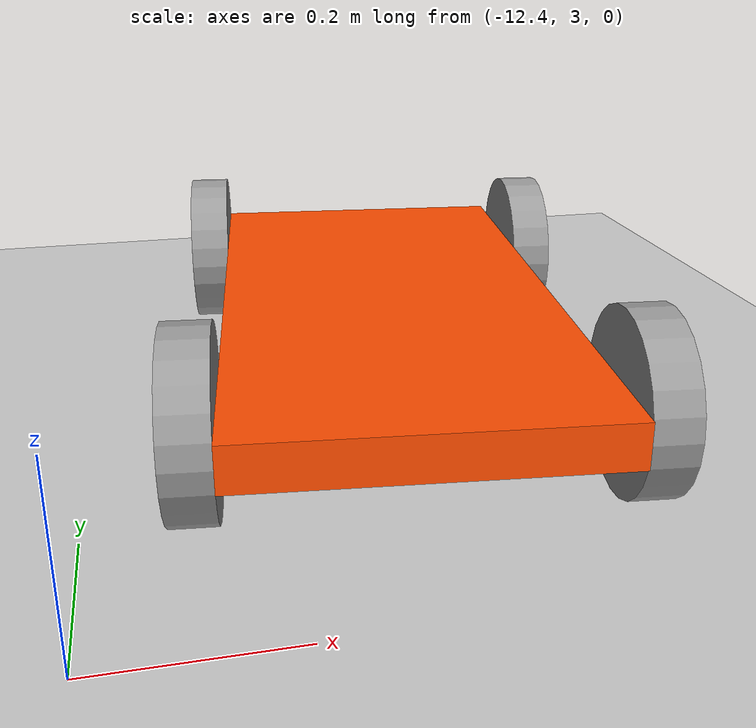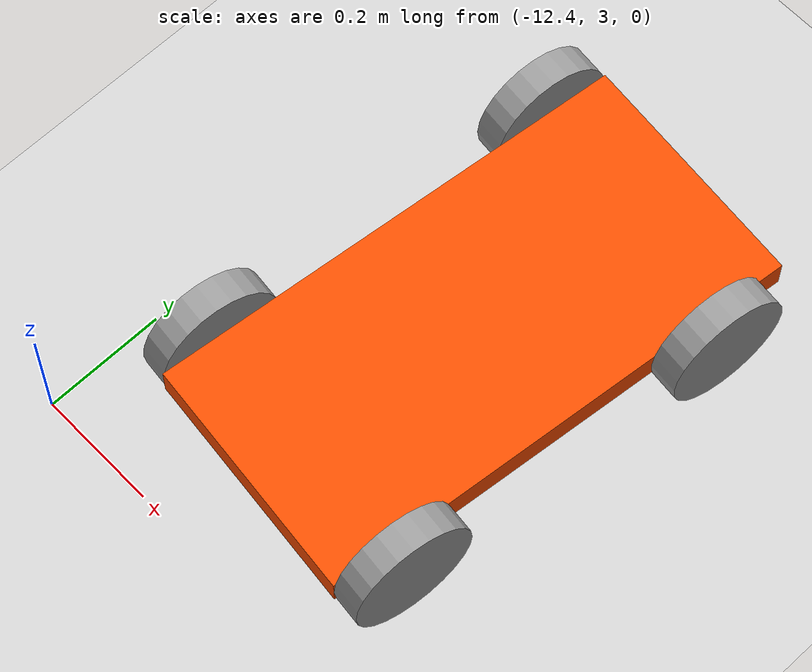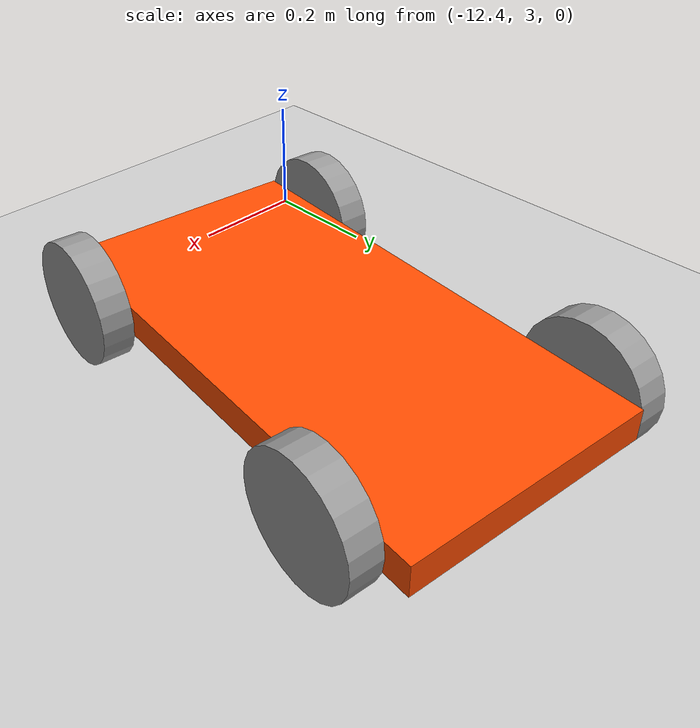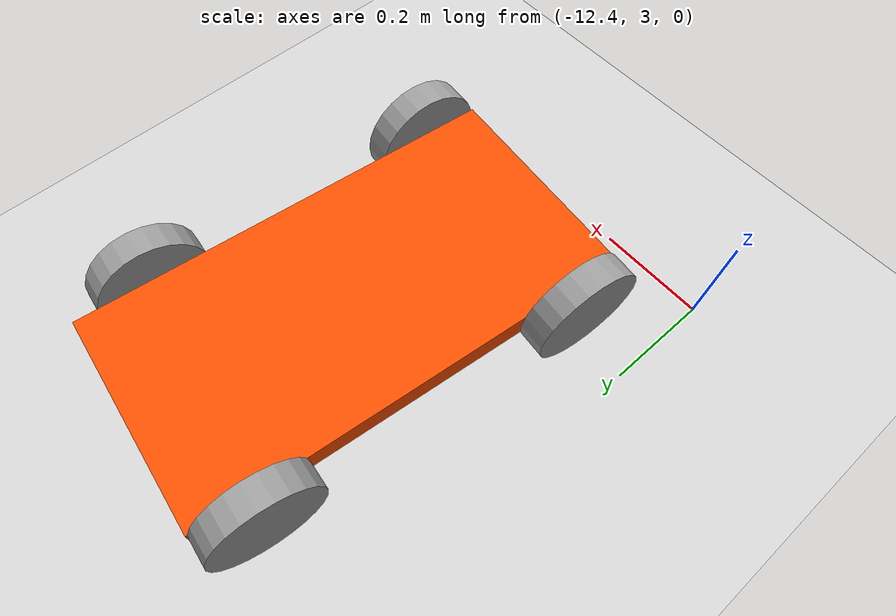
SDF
<sdf version="1.6">
 <world name="default">
  <model name="ground_plane">
   <static>1</static>
   <link name="link">
    <collision name="collision">
     <geometry><plane><normal>0 0 1</normal><size>100 100</size></plane></geometry>
     <surface><friction><ode><mu>100</mu><mu2>50</mu2></ode></friction></surface>
    </collision>
    <visual name="visual">
     <cast_shadows>0</cast_shadows>
     <geometry><plane><normal>0 0 1</normal><size>100 100</size></plane></geometry>
     <material>
      <script><uri>file://media/materials/scripts/gazebo.material</uri><name>Gazebo/Grey</name></script>
     </material>
    </visual>
   </link>
  </model>
  <model name="myRobot_4">
   <link name="link_0">
    <pose>0.008 1e-06 0 0 -0 0</pose>
    <inertial>
     <mass>1</mass>
     <inertia>
      <ixx>0.166667</ixx>
      <ixy>0</ixy>
      <ixz>0</ixz>
      <iyy>0.166667</iyy>
      <iyz>0</iyz>
      <izz>0.166667</izz>
     </inertia>
    </inertial>
    <visual name="visual">
     <geometry><box><size>0.8 0.4 0.05</size></box></geometry>
     <material>
      <lighting>1</lighting>
      <script><uri>file://media/materials/scripts/gazebo.material</uri><name>Gazebo/Grey</name></script>
      <shader type="pixel"><normal_map>__default__</normal_map></shader>
      <ambient>1 0.3 0 1</ambient>
      <diffuse>0.7 0.7 0.7 1</diffuse>
      <specular>0.01 0.01 0.01 1</specular>
      <emissive>0 0 0 1</emissive>
     </material>
    </visual>
    <collision name="collision">
     <geometry><box><size>0.8 0.4 0.05</size></box></geometry>
     <surface>
      <friction>
       <ode><mu>1</mu><mu2>1</mu2><fdir1>0 0 0</fdir1><slip1>0</slip1><slip2>0</slip2></ode>
       <torsional>
        <coefficient>1</coefficient>
        <patch_radius>0</patch_radius>
        <surface_radius>0</surface_radius>
        <use_patch_radius>1</use_patch_radius>
        <ode><slip>0</slip></ode>
       </torsional>
      </friction>
      <bounce><restitution_coefficient>0</restitution_coefficient><threshold>1e+06</threshold></bounce>
      <contact>
       <collide_without_contact>0</collide_without_contact>
       <collide_without_contact_bitmask>1</collide_without_contact_bitmask>
       <collide_bitmask>1</collide_bitmask>
       <ode>
        <soft_cfm>0</soft_cfm>
        <soft_erp>0.2</soft_erp>
        <kp>1e+13</kp>
        <kd>1</kd>
        <max_vel>0.01</max_vel>
        <min_depth>0</min_depth>
       </ode>
       <bullet>
        <split_impulse>1</split_impulse>
        <split_impulse_penetration_threshold>-0.01</split_impulse_penetration_threshold>
        <soft_cfm>0</soft_cfm>
        <soft_erp>0.2</soft_erp>
        <kp>1e+13</kp>
        <kd>1</kd>
       </bullet>
      </contact>
     </surface>
    </collision>
   </link>
   <link name="link_1">
    <pose>0.268 -0.225013 0 1.5707 -0 0</pose>
    <inertial>
     <mass>1</mass>
     <inertia><ixx>0.145833</ixx><ixy>0</ixy><ixz>0</ixz><iyy>0.145833</iyy><iyz>0</iyz><izz>0.125</izz></inertia>
    </inertial>
    <visual name="visual">
     <geometry><cylinder><radius>0.1</radius><length>0.05</length></cylinder></geometry>
     <material>
      <lighting>1</lighting>
      <script><uri>file://media/materials/scripts/gazebo.material</uri><name>Gazebo/Grey</name></script>
      <shader type="pixel"><normal_map>__default__</normal_map></shader>
      <ambient>1 1 1 1</ambient>
      <diffuse>0.7 0.7 0.7 1</diffuse>
      <specular>0.01 0.01 0.01 1</specular>
      <emissive>0 0 0 1</emissive>
     </material>
    </visual>
    <collision name="collision">
     <geometry><cylinder><radius>0.1</radius><length>0.05</length></cylinder></geometry>
     <surface>
      <friction>
       <ode><mu>1</mu><mu2>1</mu2><fdir1>0 0 0</fdir1><slip1>0</slip1><slip2>0</slip2></ode>
       <torsional>
        <coefficient>1</coefficient>
        <patch_radius>0</patch_radius>
        <surface_radius>0</surface_radius>
        <use_patch_radius>1</use_patch_radius>
        <ode><slip>0</slip></ode>
       </torsional>
      </friction>
      <bounce><restitution_coefficient>0</restitution_coefficient><threshold>1e+06</threshold></bounce>
      <contact>
       <collide_without_contact>0</collide_without_contact>
       <collide_without_contact_bitmask>1</collide_without_contact_bitmask>
       <collide_bitmask>1</collide_bitmask>
       <ode>
        <soft_cfm>0</soft_cfm>
        <soft_erp>0.2</soft_erp>
        <kp>1e+13</kp>
        <kd>1</kd>
        <max_vel>0.01</max_vel>
        <min_depth>0</min_depth>
       </ode>
       <bullet>
        <split_impulse>1</split_impulse>
        <split_impulse_penetration_threshold>-0.01</split_impulse_penetration_threshold>
        <soft_cfm>0</soft_cfm>
        <soft_erp>0.2</soft_erp>
        <kp>1e+13</kp>
        <kd>1</kd>
       </bullet>
      </contact>
     </surface>
    </collision>
   </link>
   <link name="link_1_clone">
    <pose>-0.292 -0.225009 0 1.5707 -0 0</pose>
    <inertial>
     <mass>1</mass>
     <inertia><ixx>0.145833</ixx><ixy>0</ixy><ixz>0</ixz><iyy>0.145833</iyy><iyz>0</iyz><izz>0.125</izz></inertia>
    </inertial>
    <visual name="visual">
     <geometry><cylinder><radius>0.1</radius><length>0.05</length></cylinder></geometry>
     <material>
      <lighting>1</lighting>
      <script><uri>file://media/materials/scripts/gazebo.material</uri><name>Gazebo/Grey</name></script>
      <shader type="pixel"><normal_map>__default__</normal_map></shader>
      <ambient>1 1 1 1</ambient>
      <diffuse>0.7 0.7 0.7 1</diffuse>
      <specular>0.01 0.01 0.01 1</specular>
      <emissive>0 0 0 1</emissive>
     </material>
    </visual>
    <collision name="collision">
     <geometry><cylinder><radius>0.1</radius><length>0.05</length></cylinder></geometry>
     <surface>
      <friction>
       <ode><mu>1</mu><mu2>1</mu2><fdir1>0 0 0</fdir1><slip1>0</slip1><slip2>0</slip2></ode>
       <torsional>
        <coefficient>1</coefficient>
        <patch_radius>0</patch_radius>
        <surface_radius>0</surface_radius>
        <use_patch_radius>1</use_patch_radius>
        <ode><slip>0</slip></ode>
       </torsional>
      </friction>
      <bounce><restitution_coefficient>0</restitution_coefficient><threshold>1e+06</threshold></bounce>
      <contact>
       <collide_without_contact>0</collide_without_contact>
       <collide_without_contact_bitmask>1</collide_without_contact_bitmask>
       <collide_bitmask>1</collide_bitmask>
       <ode>
        <soft_cfm>0</soft_cfm>
        <soft_erp>0.2</soft_erp>
        <kp>1e+13</kp>
        <kd>1</kd>
        <max_vel>0.01</max_vel>
        <min_depth>0</min_depth>
       </ode>
       <bullet>
        <split_impulse>1</split_impulse>
        <split_impulse_penetration_threshold>-0.01</split_impulse_penetration_threshold>
        <soft_cfm>0</soft_cfm>
        <soft_erp>0.2</soft_erp>
        <kp>1e+13</kp>
        <kd>1</kd>
       </bullet>
      </contact>
     </surface>
    </collision>
   </link>
   <link name="link_1_clone_0">
    <pose>0.308 0.22501 0 1.5707 -0 0</pose>
    <inertial>
     <mass>1</mass>
     <inertia><ixx>0.145833</ixx><ixy>0</ixy><ixz>0</ixz><iyy>0.145833</iyy><iyz>0</iyz><izz>0.125</izz></inertia>
    </inertial>
    <visual name="visual">
     <geometry><cylinder><radius>0.1</radius><length>0.05</length></cylinder></geometry>
     <material>
      <lighting>1</lighting>
      <script><uri>file://media/materials/scripts/gazebo.material</uri><name>Gazebo/Grey</name></script>
      <shader type="pixel"><normal_map>__default__</normal_map></shader>
      <ambient>1 1 1 1</ambient>
      <diffuse>0.7 0.7 0.7 1</diffuse>
      <specular>0.01 0.01 0.01 1</specular>
      <emissive>0 0 0 1</emissive>
     </material>
    </visual>
    <collision name="collision">
     <geometry><cylinder><radius>0.1</radius><length>0.05</length></cylinder></geometry>
     <surface>
      <friction>
       <ode><mu>1</mu><mu2>1</mu2><fdir1>0 0 0</fdir1><slip1>0</slip1><slip2>0</slip2></ode>
       <torsional>
        <coefficient>1</coefficient>
        <patch_radius>0</patch_radius>
        <surface_radius>0</surface_radius>
        <use_patch_radius>1</use_patch_radius>
        <ode><slip>0</slip></ode>
       </torsional>
      </friction>
      <bounce><restitution_coefficient>0</restitution_coefficient><threshold>1e+06</threshold></bounce>
      <contact>
       <collide_without_contact>0</collide_without_contact>
       <collide_without_contact_bitmask>1</collide_without_contact_bitmask>
       <collide_bitmask>1</collide_bitmask>
       <ode>
        <soft_cfm>0</soft_cfm>
        <soft_erp>0.2</soft_erp>
        <kp>1e+13</kp>
        <kd>1</kd>
        <max_vel>0.01</max_vel>
        <min_depth>0</min_depth>
       </ode>
       <bullet>
        <split_impulse>1</split_impulse>
        <split_impulse_penetration_threshold>-0.01</split_impulse_penetration_threshold>
        <soft_cfm>0</soft_cfm>
        <soft_erp>0.2</soft_erp>
        <kp>1e+13</kp>
        <kd>1</kd>
       </bullet>
      </contact>
     </surface>
    </collision>
   </link>
   <link name="link_1_clone_1">
    <pose>-0.292 0.22501 0 1.5707 -0 0</pose>
    <inertial>
     <mass>1</mass>
     <inertia><ixx>0.145833</ixx><ixy>0</ixy><ixz>0</ixz><iyy>0.145833</iyy><iyz>0</iyz><izz>0.125</izz></inertia>
    </inertial>
    <visual name="visual">
     <geometry><cylinder><radius>0.1</radius><length>0.05</length></cylinder></geometry>
     <material>
      <lighting>1</lighting>
      <script><uri>file://media/materials/scripts/gazebo.material</uri><name>Gazebo/Grey</name></script>
      <shader type="pixel"><normal_map>__default__</normal_map></shader>
      <ambient>1 1 1 1</ambient>
      <diffuse>0.7 0.7 0.7 1</diffuse>
      <specular>0.01 0.01 0.01 1</specular>
      <emissive>0 0 0 1</emissive>
     </material>
    </visual>
    <collision name="collision">
     <geometry><cylinder><radius>0.1</radius><length>0.05</length></cylinder></geometry>
     <surface>
      <friction>
       <ode><mu>1</mu><mu2>1</mu2><fdir1>0 0 0</fdir1><slip1>0</slip1><slip2>0</slip2></ode>
       <torsional>
        <coefficient>1</coefficient>
        <patch_radius>0</patch_radius>
        <surface_radius>0</surface_radius>
        <use_patch_radius>1</use_patch_radius>
        <ode><slip>0</slip></ode>
       </torsional>
      </friction>
      <bounce><restitution_coefficient>0</restitution_coefficient><threshold>1e+06</threshold></bounce>
      <contact>
       <collide_without_contact>0</collide_without_contact>
       <collide_without_contact_bitmask>1</collide_without_contact_bitmask>
       <collide_bitmask>1</collide_bitmask>
       <ode>
        <soft_cfm>0</soft_cfm>
        <soft_erp>0.2</soft_erp>
        <kp>1e+13</kp>
        <kd>1</kd>
        <max_vel>0.01</max_vel>
        <min_depth>0</min_depth>
       </ode>
       <bullet>
        <split_impulse>1</split_impulse>
        <split_impulse_penetration_threshold>-0.01</split_impulse_penetration_threshold>
        <soft_cfm>0</soft_cfm>
        <soft_erp>0.2</soft_erp>
        <kp>1e+13</kp>
        <kd>1</kd>
       </bullet>
      </contact>
     </surface>
    </collision>
   </link>
   <joint name="link_0_JOINT_1" type="revolute">
    <parent>link_0</parent>
    <child>link_1</child>
    <axis>
     <xyz>0 0 1</xyz>
     <use_parent_model_frame>0</use_parent_model_frame>
     <limit>
      <lower>-1.79769e+308</lower>
      <upper>1.79769e+308</upper>
      <effort>-1</effort>
      <velocity>-1</velocity>
     </limit>
     <dynamics>
      <spring_reference>0</spring_reference>
      <spring_stiffness>0</spring_stiffness>
      <damping>0</damping>
     </dynamics>
    </axis>
    <physics>
     <ode><limit><cfm>0</cfm><erp>0.2</erp></limit><suspension><cfm>0</cfm><erp>0.2</erp></suspension></ode>
    </physics>
   </joint>
   <joint name="link_0_JOINT_2" type="revolute">
    <parent>link_0</parent>
    <child>link_1_clone</child>
    <axis>
     <xyz>0 0 1</xyz>
     <use_parent_model_frame>0</use_parent_model_frame>
     <limit>
      <lower>-1.79769e+308</lower>
      <upper>1.79769e+308</upper>
      <effort>-1</effort>
      <velocity>-1</velocity>
     </limit>
     <dynamics>
      <spring_reference>0</spring_reference>
      <spring_stiffness>0</spring_stiffness>
      <damping>0</damping>
     </dynamics>
    </axis>
    <physics>
     <ode><limit><cfm>0</cfm><erp>0.2</erp></limit><suspension><cfm>0</cfm><erp>0.2</erp></suspension></ode>
    </physics>
   </joint>
   <joint name="link_0_JOINT_3" type="revolute">
    <parent>link_0</parent>
    <child>link_1_clone_0</child>
    <axis>
     <xyz>0 0 1</xyz>
     <use_parent_model_frame>0</use_parent_model_frame>
     <limit>
      <lower>-1.79769e+308</lower>
      <upper>1.79769e+308</upper>
      <effort>-1</effort>
      <velocity>-1</velocity>
     </limit>
     <dynamics>
      <spring_reference>0</spring_reference>
      <spring_stiffness>0</spring_stiffness>
      <damping>0</damping>
     </dynamics>
    </axis>
    <physics>
     <ode><limit><cfm>0</cfm><erp>0.2</erp></limit><suspension><cfm>0</cfm><erp>0.2</erp></suspension></ode>
    </physics>
   </joint>
   <joint name="link_0_JOINT_4" type="revolute">
    <parent>link_0</parent>
    <child>link_1_clone_1</child>
    <axis>
     <xyz>0 0 1</xyz>
     <use_parent_model_frame>0</use_parent_model_frame>
     <limit>
      <lower>-1.79769e+308</lower>
      <upper>1.79769e+308</upper>
      <effort>-1</effort>
      <velocity>-1</velocity>
     </limit>
     <dynamics>
      <spring_reference>0</spring_reference>
      <spring_stiffness>0</spring_stiffness>
      <damping>0</damping>
     </dynamics>
    </axis>
    <physics>
     <ode><limit><cfm>0</cfm><erp>0.2</erp></limit><suspension><cfm>0</cfm><erp>0.2</erp></suspension></ode>
    </physics>
   </joint>
   <static>0</static>
   <pose>-12.0298 3.48203 0.110003 4e-06 -0 1.46305</pose>
  </model>
 </world>
</sdf>
